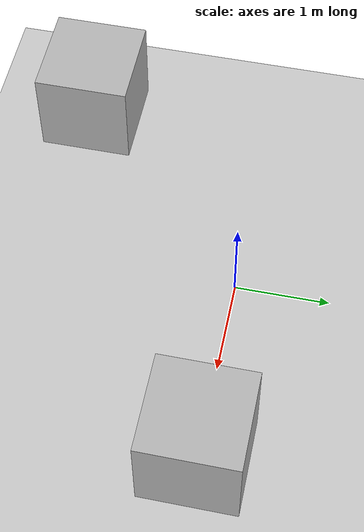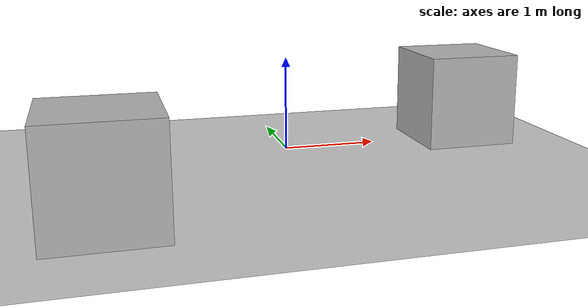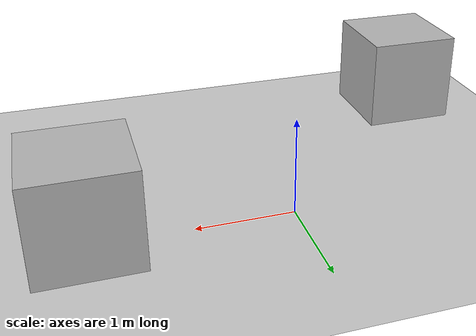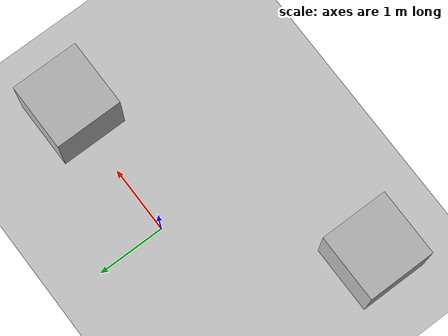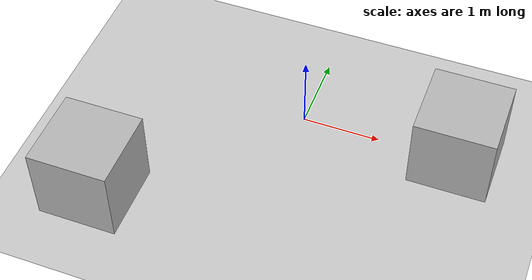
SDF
<?xml version="1.0" ?>
<sdf version="1.6">
  <world name="default">
    <include>
      <uri>model://sun</uri>
    </include>
    <include>
      <uri>model://ground_plane</uri>
    </include>

    <!-- Engeller -->
    <model name="box1">
      <static>true</static>
      <link name="link">
        <collision name="collision">
          <geometry>
            <box>
              <size>1 1 1</size>
            </box>
          </geometry>
        </collision>
        <visual name="visual">
          <geometry>
            <box>
              <size>1 1 1</size>
            </box>
          </geometry>
        </visual>
      </link>
      <pose>2 0 0.5 0 0 0</pose>
    </model>

    <model name="box2">
      <static>true</static>
      <link name="link">
        <collision name="collision">
          <geometry>
            <box>
              <size>1 1 1</size>
            </box>
          </geometry>
        </collision>
        <visual name="visual">
          <geometry>
            <box>
              <size>1 1 1</size>
            </box>
          </geometry>
        </visual>
      </link>
      <pose>-2 -2 0.5 0 0 0</pose>
    </model>
  </world>
</sdf>
